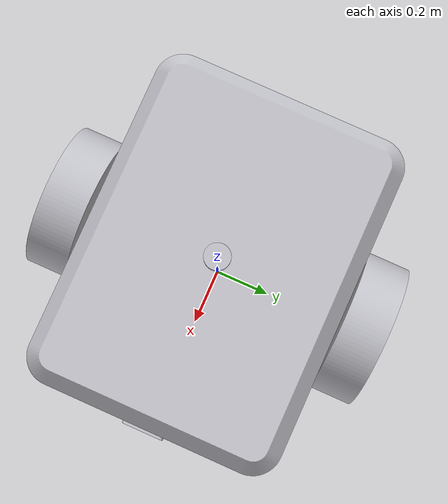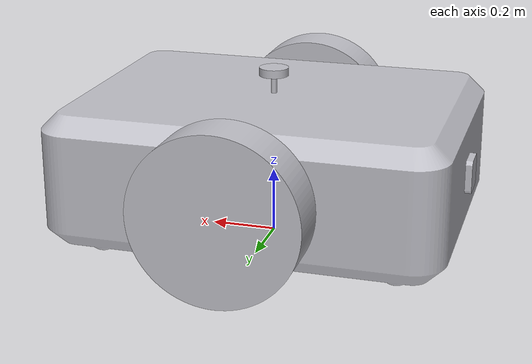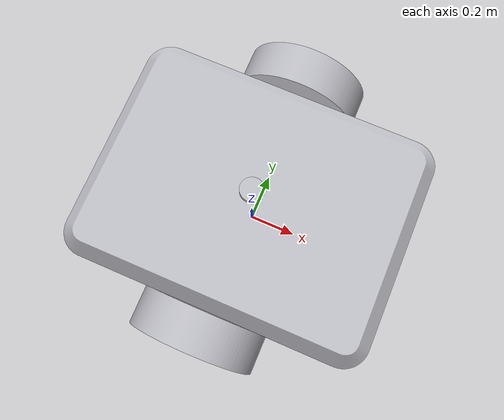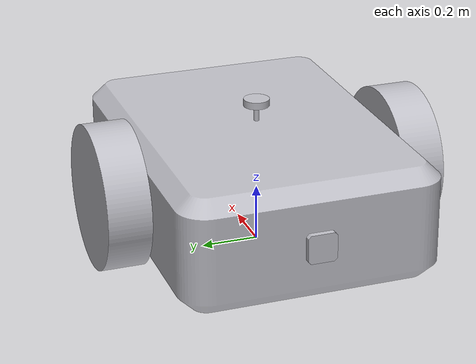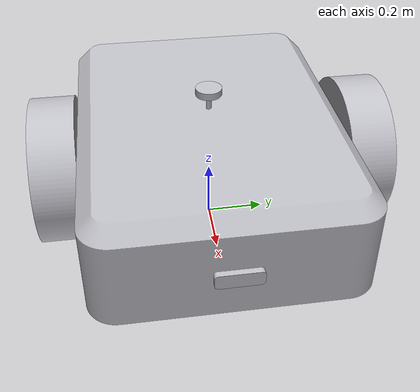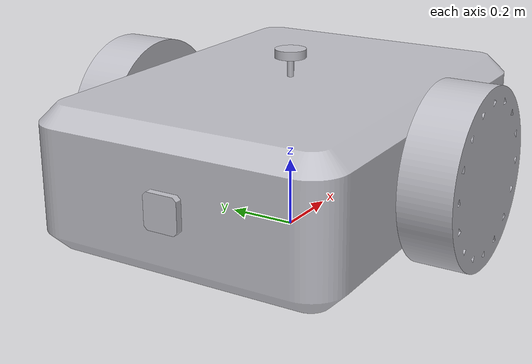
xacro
<?xml version="1.0" ?>
<robot name="mack" xmlns:xacro="http://www.ros.org/wiki/xacro">

<xacro:include filename="$(find mack_description)/urdf/materials.xacro" />
<xacro:include filename="$(find mack_description)/urdf/mack.trans" />
<xacro:include filename="$(find mack_description)/urdf/mack.gazebo" />

<link name="base_footprint">
  <visual>
    <origin xyz="0 0 0" rpy="0 0 0" />
    <geometry>
      <box size="0.0 0.0 0.0" />
    </geometry>
  </visual>
</link>

<link name="base_link">
  <inertial>
    <origin xyz="1.651959677776143e-14 7.342043012338414e-15 0.24848111951334495" rpy="0 0 0"/>
    <mass value="8.067525026209186"/>
    <inertia ixx="0.948767" iyy="1.37053" izz="1.906217" ixy="0.0" iyz="0.0" ixz="0.0"/>
  </inertial>
  <visual>
    <origin xyz="0 0 0" rpy="0 0 0"/>
    <geometry>
      <mesh filename="file://$(find mack_description)/meshes/base_link.stl" scale="0.001 0.001 0.001"/>
    </geometry>
    <material name="silver"/>
  </visual>
  <collision>
    <origin xyz="0 0 0" rpy="0 0 0"/>
    <geometry>
      <mesh filename="file://$(find mack_description)/meshes/base_link.stl" scale="0.001 0.001 0.001"/>
    </geometry>
  </collision>
</link>

<link name="lidar_link_1">
  <inertial>
    <origin xyz="0.0 -7.176535738980816e-18 0.012499999999999956" rpy="0 0 0"/>
    <mass value="1.2435549805280102"/>
    <inertia ixx="0.000692" iyy="0.000692" izz="0.001254" ixy="-0.0" iyz="0.0" ixz="0.0"/>
  </inertial>
  <visual>
    <origin xyz="-0.0 -0.0 -0.505" rpy="0 0 0"/>
    <geometry>
      <mesh filename="file://$(find mack_description)/meshes/lidar_link_1.stl" scale="0.001 0.001 0.001"/>
    </geometry>
    <material name="silver"/>
  </visual>
  <collision>
    <origin xyz="-0.0 -0.0 -0.505" rpy="0 0 0"/>
    <geometry>
      <mesh filename="file://$(find mack_description)/meshes/lidar_link_1.stl" scale="0.001 0.001 0.001"/>
    </geometry>
  </collision>
</link>

<link name="camera1_link_1">
  <inertial>
    <origin xyz="-0.01000000000000012 0.0 -2.7755575615628914e-17" rpy="0 0 0"/>
    <mass value="1.5386"/>
    <inertia ixx="0.00248" iyy="0.001291" izz="0.001291" ixy="0.0" iyz="-0.0" ixz="-0.0"/>
  </inertial>
  <visual>
    <origin xyz="0.6 0.0 -0.25" rpy="0 0 0"/>
    <geometry>
      <mesh filename="file://$(find mack_description)/meshes/camera1_link_1.stl" scale="0.001 0.001 0.001"/>
    </geometry>
    <material name="silver"/>
  </visual>
  <collision>
    <origin xyz="0.6 0.0 -0.25" rpy="0 0 0"/>
    <geometry>
      <mesh filename="file://$(find mack_description)/meshes/camera1_link_1.stl" scale="0.001 0.001 0.001"/>
    </geometry>
  </collision>
</link>

<link name="camera2_link_1">
  <inertial>
    <origin xyz="0.01000000000000012 -1.5434263470157426e-17 0.0" rpy="0 0 0"/>
    <mass value="1.1564421947833745"/>
    <inertia ixx="0.002333" iyy="0.000273" izz="0.002136" ixy="0.0" iyz="-0.0" ixz="0.0"/>
  </inertial>
  <visual>
    <origin xyz="-0.6 -0.0 -0.25" rpy="0 0 0"/>
    <geometry>
      <mesh filename="file://$(find mack_description)/meshes/camera2_link_1.stl" scale="0.001 0.001 0.001"/>
    </geometry>
    <material name="silver"/>
  </visual>
  <collision>
    <origin xyz="-0.6 -0.0 -0.25" rpy="0 0 0"/>
    <geometry>
      <mesh filename="file://$(find mack_description)/meshes/camera2_link_1.stl" scale="0.001 0.001 0.001"/>
    </geometry>
  </collision>
</link>

<link name="right_wheel_1">
  <inertial>
    <origin xyz="-1.314186043317187e-16 -0.07167564927756392 5.551115123125783e-17" rpy="0 0 0"/>
    <mass value="28.091421240445644"/>
    <inertia ixx="0.490702" iyy="0.855559" izz="0.490702" ixy="0.0" iyz="-0.0" ixz="0.0"/>
  </inertial>
  <visual>
    <origin xyz="-0.0 0.45 -0.25" rpy="0 0 0"/>
    <geometry>
      <mesh filename="file://$(find mack_description)/meshes/right_wheel_1.stl" scale="0.001 0.001 0.001"/>
    </geometry>
    <material name="silver"/>
  </visual>
  <collision>
    <origin xyz="-0.0 0.45 -0.25" rpy="0 0 0"/>
    <geometry>
      <mesh filename="file://$(find mack_description)/meshes/right_wheel_1.stl" scale="0.001 0.001 0.001"/>
    </geometry>
  </collision>
</link>

<link name="left_wheel_1">
  <inertial>
    <origin xyz="3.552713678800501e-17 0.07175324675324674 -1.6653345369377348e-16" rpy="0 0 0"/>
    <mass value="28.121181240445637"/>
    <inertia ixx="0.49152" iyy="0.856874" izz="0.49152" ixy="-0.0" iyz="0.0" ixz="0.0"/>
  </inertial>
  <visual>
    <origin xyz="-0.0 -0.45 -0.25" rpy="0 0 0"/>
    <geometry>
      <mesh filename="file://$(find mack_description)/meshes/left_wheel_1.stl" scale="0.001 0.001 0.001"/>
    </geometry>
    <material name="silver"/>
  </visual>
  <collision>
    <origin xyz="-0.0 -0.45 -0.25" rpy="0 0 0"/>
    <geometry>
      <mesh filename="file://$(find mack_description)/meshes/left_wheel_1.stl" scale="0.001 0.001 0.001"/>
    </geometry>
  </collision>
</link>

<joint name="fixed_base_joint" type="fixed">
  <parent link="base_footprint" />
  <child link="base_link" />
  <origin xyz="0 0 0" rpy="0 0 0" />
</joint>
s
<joint name="Rigid 4" type="fixed">
  <origin xyz="0.0 0.0 0.505" rpy="0 0 0"/>
  <parent link="base_link"/>
  <child link="lidar_link_1"/>
</joint>

<joint name="Rigid 5" type="fixed">
  <origin xyz="-0.6 0.0 0.25" rpy="0 0 0"/>
  <parent link="base_link"/>
  <child link="camera1_link_1"/>
</joint>

<joint name="Rigid 6" type="fixed">
  <origin xyz="0.6 0.0 0.25" rpy="0 0 0"/>
  <parent link="base_link"/>
  <child link="camera2_link_1"/>
</joint>

<joint name="Revolute 7" type="continuous">
  <origin xyz="0.0 -0.45 0.25" rpy="0 0 0"/>
  <parent link="base_link"/>
  <child link="right_wheel_1"/>
  <axis xyz="0.0 1.0 0.0"/>
</joint>

<joint name="Revolute 9" type="continuous">
  <origin xyz="0.0 0.45 0.25" rpy="0 0 0"/>
  <parent link="base_link"/>
  <child link="left_wheel_1"/>
  <axis xyz="0.0 1.0 0.0"/>
</joint>

</robot>

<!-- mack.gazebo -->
<robot name="mack" xmlns:xacro="http://www.ros.org/wiki/xacro" >

<xacro:property name="body_color" value="Gazebo/Green" />
<xacro:property name="wheel_color" value="Gazebo/DarkGrey" />
<xacro:property name="lidar_color" value="Gazebo/Red" />
<xacro:property name="camera1_color" value="Gazebo/Blue" />
<xacro:property name="camera2_color" value="Gazebo/Black" />

<gazebo>
  <plugin name="control" filename="libgazebo_ros_control.so"/>
</gazebo>

  <gazebo>
    <plugin name="diff_drive_control" filename="libgazebo_ros_diff_drive.so">

      <!-- Update rate in Hz -->
      <update_rate>10</update_rate>

      <!-- wheels -->
      <left_joint>Revolute 9</left_joint>
      <right_joint>Revolute 7</right_joint>

      <!-- kinematics -->
      <wheel_separation>1.05</wheel_separation>
      <wheel_diameter>0.5</wheel_diameter>

      <!-- input -->
      <command_topic>cmd_vel</command_topic>

      <!-- output -->
      <publish_odom>true</publish_odom>
      <publish_odom_tf>true</publish_odom_tf>
      <publish_wheel_tf>true</publish_wheel_tf>

      <odometry_topic>odom</odometry_topic>
      <odometry_frame>odom</odometry_frame>
      <robot_base_frame>base_footprint</robot_base_frame>

    </plugin>
  </gazebo>

  <gazebo reference="lidar_link_1">
    <sensor type="ray" name="head_hokuyo_sensor">
      <pose>0 0 0 0 0 0</pose>
      <visualize>false</visualize>
      <update_rate>20</update_rate>
      <ray>
        <scan>
          <horizontal>
            <samples>300</samples>
            <resolution>1</resolution>
            <min_angle>-3.14</min_angle>
            <max_angle>3.14</max_angle>
          </horizontal>
        </scan>
        <range>
          <min>0.10</min>
          <max>30.0</max>
          <resolution>0.01</resolution>
        </range>
        <noise>
          <type>gaussian</type>
          <mean>0.0</mean>
          <stddev>0.01</stddev>
        </noise>
      </ray>
      <plugin name="my_ray_sensor_plugin" filename="libgazebo_ros_ray_sensor.so">
        <ros>
          <!-- Configure namespace and remap to publish to /ray/pointcloud2 -->
          <remapping>~/out:=scan</remapping>
        </ros>
        <!-- Output as a PointCloud2, see above for other types -->
        <output_type>sensor_msgs/LaserScan</output_type>
        <!-- Clip intensity values so all are above 100, optional -->
        <min_intensity>100.0</min_intensity>
        <!-- Frame id for header of output, defaults to sensor's parent link name -->
        <frame_name>lidar_link_1</frame_name>
      </plugin>
    </sensor>
  </gazebo>

<gazebo reference="base_link">
  <material>${body_color}</material>
  <mu1>0.2</mu1>
  <mu2>0.2</mu2>
  <self_collide>true</self_collide>
  <gravity>true</gravity>
</gazebo>

<gazebo reference="lidar_link_1">
  <material>${lidar_color}</material>
  <mu1>0.2</mu1>
  <mu2>0.2</mu2>
  <self_collide>true</self_collide>
</gazebo>

<gazebo reference="camera1_link_1">
  <material>${camera1_color}</material>
  <mu1>0.2</mu1>
  <mu2>0.2</mu2>
  <self_collide>true</self_collide>
</gazebo>

<gazebo reference="camera2_link_1">
  <material>${camera2_color}</material>
  <mu1>0.2</mu1>
  <mu2>0.2</mu2>
  <self_collide>true</self_collide>
</gazebo>

<gazebo reference="right_wheel_1">
  <material>${wheel_color}</material>
  <mu1>0.2</mu1>
  <mu2>0.2</mu2>
  <self_collide>true</self_collide>
</gazebo>

<gazebo reference="left_wheel_1">
  <material>${wheel_color}</material>
  <mu1>0.2</mu1>
  <mu2>0.2</mu2>
  <self_collide>true</self_collide>
</gazebo>

</robot>
